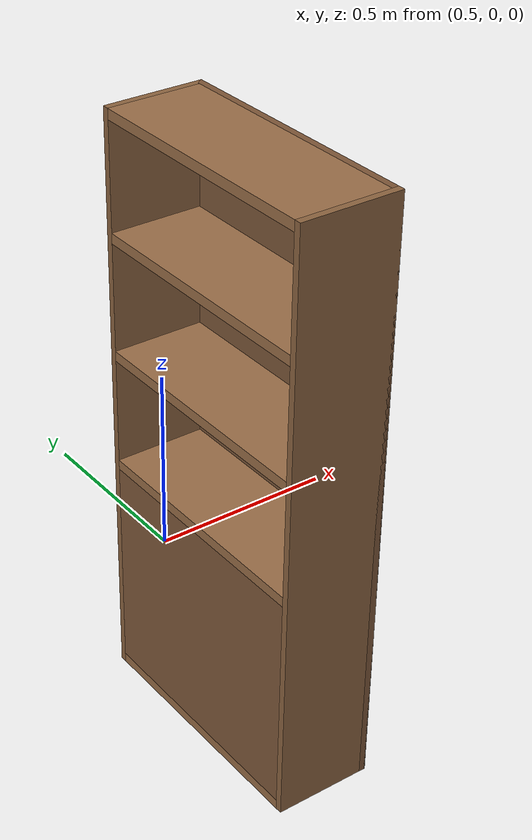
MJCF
<mujoco model="bookshelf">
  <worldbody>
    <body name="bookshelf">
      <!-- side panels -->
      <geom name="bookshelf_left_side" type="box"
            pos="0.7475 -0.385 0.165" size="0.1475 0.010 0.885"
            rgba="0.55 0.39 0.25 1" condim="3" friction="0.9 0.005 0.0001"/>
      <geom name="bookshelf_right_side" type="box"
            pos="0.7475 0.385 0.165" size="0.1475 0.010 0.885"
            rgba="0.55 0.39 0.25 1" condim="3" friction="0.9 0.005 0.0001"/>

      <!-- back panel -->
      <geom name="bookshelf_back_panel" type="box"
            pos="0.885 0.0 0.165" size="0.010 0.395 0.885"
            rgba="0.49 0.34 0.22 1" condim="3" friction="0.9 0.005 0.0001"/>

      <!-- horizontal boards, using 3 cm board thickness from the STEP layers -->
      <geom name="bookshelf_bottom_board" type="box"
            pos="0.7375 0.0 -0.705" size="0.1375 0.375 0.015"
            rgba="0.60 0.43 0.28 1" condim="3" friction="0.9 0.005 0.0001"/>
      <geom name="bookshelf_lower_closed_panel" type="box"
            pos="0.7375 0.0 -0.355" size="0.1375 0.375 0.335"
            rgba="0.50 0.35 0.23 1" condim="3" friction="0.9 0.005 0.0001"/>
      <geom name="bookshelf_shelf_00" type="box"
            pos="0.7375 0.0 -0.005" size="0.1375 0.375 0.015"
            rgba="0.60 0.43 0.28 1" condim="3" friction="0.9 0.005 0.0001"/>
      <geom name="bookshelf_shelf_01" type="box"
            pos="0.7375 0.0 0.345" size="0.1375 0.375 0.015"
            rgba="0.60 0.43 0.28 1" condim="3" friction="0.9 0.005 0.0001"/>
      <geom name="bookshelf_shelf_02" type="box"
            pos="0.7375 0.0 0.695" size="0.1375 0.375 0.015"
            rgba="0.60 0.43 0.28 1" condim="3" friction="0.9 0.005 0.0001"/>
      <geom name="bookshelf_top_board" type="box"
            pos="0.7375 0.0 1.035" size="0.1375 0.375 0.015"
            rgba="0.60 0.43 0.28 1" condim="3" friction="0.9 0.005 0.0001"/>
    </body>
  </worldbody>
</mujoco>
